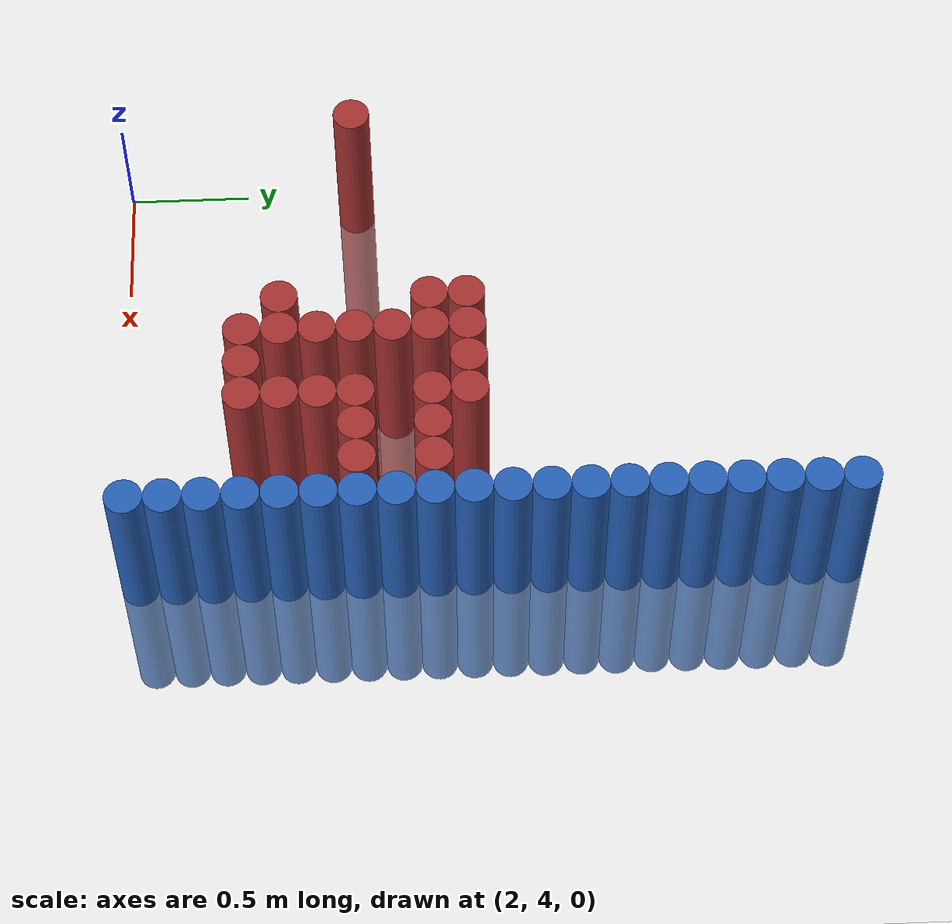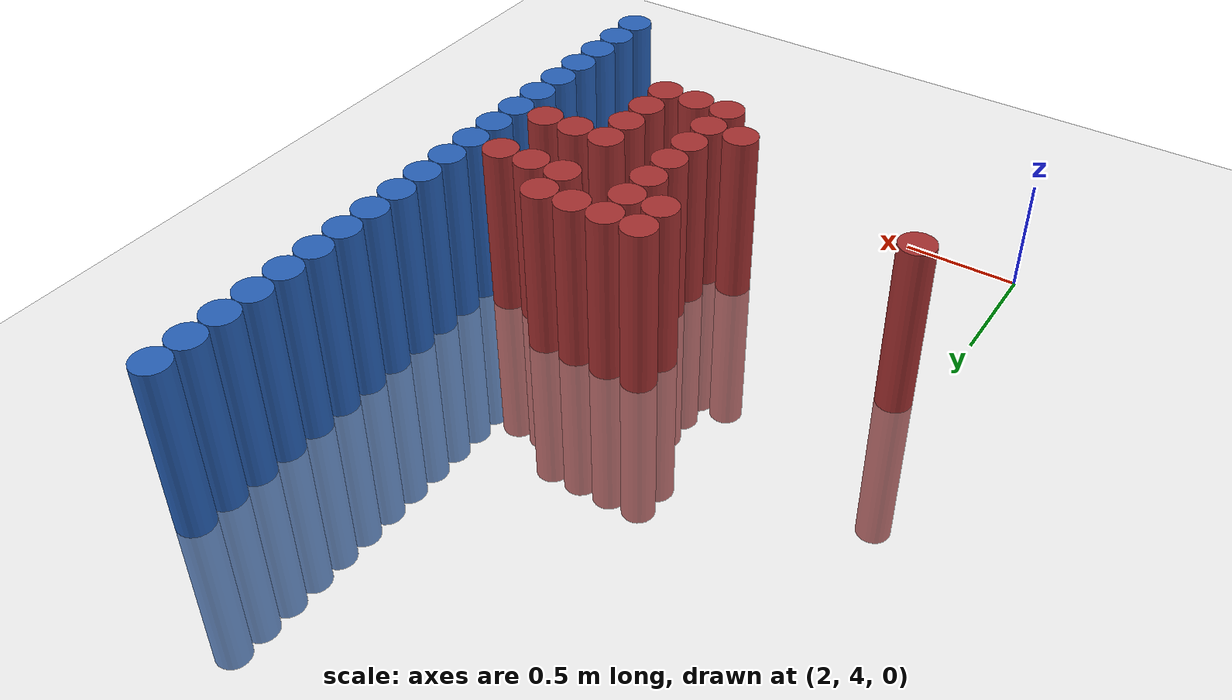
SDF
<sdf version="1.6">
 <world name="default">
  <model name="ground_plane">
   <static>1</static>
   <link name="link">
    <collision name="collision">
     <geometry><plane><normal>0 0 1</normal><size>100 100</size></plane></geometry>
     <surface><friction><ode><mu>100</mu><mu2>50</mu2></ode></friction></surface>
    </collision>
    <visual name="visual">
     <cast_shadows>0</cast_shadows>
     <geometry><plane><normal>0 0 1</normal><size>100 100</size></plane></geometry>
     <material>
      <script><uri>file://media/materials/scripts/gazebo.material</uri><name>Gazebo/Grey</name></script>
     </material>
    </visual>
   </link>
  </model>
  <model name="unit_cylinder_170">
   <static>1</static>
   <pose>3.925000 4.225000 0.000000 0.000000 0.000000 0.000000</pose>
   <link name="link">
    <inertial>
     <mass>1</mass>
     <inertia><ixx>0.145833</ixx><ixy>0</ixy><ixz>0</ixz><iyy>0.145833</iyy><iyz>0</iyz><izz>0.125</izz></inertia>
    </inertial>
    <collision name="collision">
     <geometry><cylinder><radius>0.075000</radius><length>1.5</length></cylinder></geometry>
    </collision>
    <visual name="visual">
     <geometry><cylinder><radius>0.075000</radius><length>1.5</length></cylinder></geometry>
     <material>
      <ambient>0.152000 0.379000 0.720000 1</ambient>
      <diffuse>0.152000 0.379000 0.720000 1</diffuse>
     </material>
     <material>
      <script><name>Gazebo/Grey</name><uri>file://media/materials/scripts/gazebo.material</uri></script>
     </material>
    </visual>
   </link>
  </model>
  <model name="unit_cylinder_172">
   <static>1</static>
   <pose>3.925000 4.375000 0.000000 0.000000 0.000000 0.000000</pose>
   <link name="link">
    <inertial>
     <mass>1</mass>
     <inertia><ixx>0.145833</ixx><ixy>0</ixy><ixz>0</ixz><iyy>0.145833</iyy><iyz>0</iyz><izz>0.125</izz></inertia>
    </inertial>
    <collision name="collision">
     <geometry><cylinder><radius>0.075000</radius><length>1.5</length></cylinder></geometry>
    </collision>
    <visual name="visual">
     <geometry><cylinder><radius>0.075000</radius><length>1.5</length></cylinder></geometry>
     <material>
      <ambient>0.152000 0.379000 0.720000 1</ambient>
      <diffuse>0.152000 0.379000 0.720000 1</diffuse>
     </material>
     <material>
      <script><name>Gazebo/Grey</name><uri>file://media/materials/scripts/gazebo.material</uri></script>
     </material>
    </visual>
   </link>
  </model>
  <model name="unit_cylinder_174">
   <static>1</static>
   <pose>3.925000 4.525000 0.000000 0.000000 0.000000 0.000000</pose>
   <link name="link">
    <inertial>
     <mass>1</mass>
     <inertia><ixx>0.145833</ixx><ixy>0</ixy><ixz>0</ixz><iyy>0.145833</iyy><iyz>0</iyz><izz>0.125</izz></inertia>
    </inertial>
    <collision name="collision">
     <geometry><cylinder><radius>0.075000</radius><length>1.5</length></cylinder></geometry>
    </collision>
    <visual name="visual">
     <geometry><cylinder><radius>0.075000</radius><length>1.5</length></cylinder></geometry>
     <material>
      <ambient>0.152000 0.379000 0.720000 1</ambient>
      <diffuse>0.152000 0.379000 0.720000 1</diffuse>
     </material>
     <material>
      <script><name>Gazebo/Grey</name><uri>file://media/materials/scripts/gazebo.material</uri></script>
     </material>
    </visual>
   </link>
  </model>
  <model name="unit_cylinder_176">
   <static>1</static>
   <pose>3.925000 4.675000 0.000000 0.000000 0.000000 0.000000</pose>
   <link name="link">
    <inertial>
     <mass>1</mass>
     <inertia><ixx>0.145833</ixx><ixy>0</ixy><ixz>0</ixz><iyy>0.145833</iyy><iyz>0</iyz><izz>0.125</izz></inertia>
    </inertial>
    <collision name="collision">
     <geometry><cylinder><radius>0.075000</radius><length>1.5</length></cylinder></geometry>
    </collision>
    <visual name="visual">
     <geometry><cylinder><radius>0.075000</radius><length>1.5</length></cylinder></geometry>
     <material>
      <ambient>0.152000 0.379000 0.720000 1</ambient>
      <diffuse>0.152000 0.379000 0.720000 1</diffuse>
     </material>
     <material>
      <script><name>Gazebo/Grey</name><uri>file://media/materials/scripts/gazebo.material</uri></script>
     </material>
    </visual>
   </link>
  </model>
  <model name="unit_cylinder_178">
   <static>1</static>
   <pose>3.925000 4.825000 0.000000 0.000000 0.000000 0.000000</pose>
   <link name="link">
    <inertial>
     <mass>1</mass>
     <inertia><ixx>0.145833</ixx><ixy>0</ixy><ixz>0</ixz><iyy>0.145833</iyy><iyz>0</iyz><izz>0.125</izz></inertia>
    </inertial>
    <collision name="collision">
     <geometry><cylinder><radius>0.075000</radius><length>1.5</length></cylinder></geometry>
    </collision>
    <visual name="visual">
     <geometry><cylinder><radius>0.075000</radius><length>1.5</length></cylinder></geometry>
     <material>
      <ambient>0.152000 0.379000 0.720000 1</ambient>
      <diffuse>0.152000 0.379000 0.720000 1</diffuse>
     </material>
     <material>
      <script><name>Gazebo/Grey</name><uri>file://media/materials/scripts/gazebo.material</uri></script>
     </material>
    </visual>
   </link>
  </model>
  <model name="unit_cylinder_180">
   <static>1</static>
   <pose>3.925000 4.975000 0.000000 0.000000 0.000000 0.000000</pose>
   <link name="link">
    <inertial>
     <mass>1</mass>
     <inertia><ixx>0.145833</ixx><ixy>0</ixy><ixz>0</ixz><iyy>0.145833</iyy><iyz>0</iyz><izz>0.125</izz></inertia>
    </inertial>
    <collision name="collision">
     <geometry><cylinder><radius>0.075000</radius><length>1.5</length></cylinder></geometry>
    </collision>
    <visual name="visual">
     <geometry><cylinder><radius>0.075000</radius><length>1.5</length></cylinder></geometry>
     <material>
      <ambient>0.152000 0.379000 0.720000 1</ambient>
      <diffuse>0.152000 0.379000 0.720000 1</diffuse>
     </material>
     <material>
      <script><name>Gazebo/Grey</name><uri>file://media/materials/scripts/gazebo.material</uri></script>
     </material>
    </visual>
   </link>
  </model>
  <model name="unit_cylinder_182">
   <static>1</static>
   <pose>3.925000 5.125000 0.000000 0.000000 0.000000 0.000000</pose>
   <link name="link">
    <inertial>
     <mass>1</mass>
     <inertia><ixx>0.145833</ixx><ixy>0</ixy><ixz>0</ixz><iyy>0.145833</iyy><iyz>0</iyz><izz>0.125</izz></inertia>
    </inertial>
    <collision name="collision">
     <geometry><cylinder><radius>0.075000</radius><length>1.5</length></cylinder></geometry>
    </collision>
    <visual name="visual">
     <geometry><cylinder><radius>0.075000</radius><length>1.5</length></cylinder></geometry>
     <material>
      <ambient>0.152000 0.379000 0.720000 1</ambient>
      <diffuse>0.152000 0.379000 0.720000 1</diffuse>
     </material>
     <material>
      <script><name>Gazebo/Grey</name><uri>file://media/materials/scripts/gazebo.material</uri></script>
     </material>
    </visual>
   </link>
  </model>
  <model name="unit_cylinder_184">
   <static>1</static>
   <pose>3.925000 5.275000 0.000000 0.000000 0.000000 0.000000</pose>
   <link name="link">
    <inertial>
     <mass>1</mass>
     <inertia><ixx>0.145833</ixx><ixy>0</ixy><ixz>0</ixz><iyy>0.145833</iyy><iyz>0</iyz><izz>0.125</izz></inertia>
    </inertial>
    <collision name="collision">
     <geometry><cylinder><radius>0.075000</radius><length>1.5</length></cylinder></geometry>
    </collision>
    <visual name="visual">
     <geometry><cylinder><radius>0.075000</radius><length>1.5</length></cylinder></geometry>
     <material>
      <ambient>0.152000 0.379000 0.720000 1</ambient>
      <diffuse>0.152000 0.379000 0.720000 1</diffuse>
     </material>
     <material>
      <script><name>Gazebo/Grey</name><uri>file://media/materials/scripts/gazebo.material</uri></script>
     </material>
    </visual>
   </link>
  </model>
  <model name="unit_cylinder_186">
   <static>1</static>
   <pose>3.925000 5.425000 0.000000 0.000000 0.000000 0.000000</pose>
   <link name="link">
    <inertial>
     <mass>1</mass>
     <inertia><ixx>0.145833</ixx><ixy>0</ixy><ixz>0</ixz><iyy>0.145833</iyy><iyz>0</iyz><izz>0.125</izz></inertia>
    </inertial>
    <collision name="collision">
     <geometry><cylinder><radius>0.075000</radius><length>1.5</length></cylinder></geometry>
    </collision>
    <visual name="visual">
     <geometry><cylinder><radius>0.075000</radius><length>1.5</length></cylinder></geometry>
     <material>
      <ambient>0.152000 0.379000 0.720000 1</ambient>
      <diffuse>0.152000 0.379000 0.720000 1</diffuse>
     </material>
     <material>
      <script><name>Gazebo/Grey</name><uri>file://media/materials/scripts/gazebo.material</uri></script>
     </material>
    </visual>
   </link>
  </model>
  <model name="unit_cylinder_188">
   <static>1</static>
   <pose>3.925000 5.575000 0.000000 0.000000 0.000000 0.000000</pose>
   <link name="link">
    <inertial>
     <mass>1</mass>
     <inertia><ixx>0.145833</ixx><ixy>0</ixy><ixz>0</ixz><iyy>0.145833</iyy><iyz>0</iyz><izz>0.125</izz></inertia>
    </inertial>
    <collision name="collision">
     <geometry><cylinder><radius>0.075000</radius><length>1.5</length></cylinder></geometry>
    </collision>
    <visual name="visual">
     <geometry><cylinder><radius>0.075000</radius><length>1.5</length></cylinder></geometry>
     <material>
      <ambient>0.152000 0.379000 0.720000 1</ambient>
      <diffuse>0.152000 0.379000 0.720000 1</diffuse>
     </material>
     <material>
      <script><name>Gazebo/Grey</name><uri>file://media/materials/scripts/gazebo.material</uri></script>
     </material>
    </visual>
   </link>
  </model>
  <model name="unit_cylinder_190">
   <static>1</static>
   <pose>3.925000 5.725000 0.000000 0.000000 0.000000 0.000000</pose>
   <link name="link">
    <inertial>
     <mass>1</mass>
     <inertia><ixx>0.145833</ixx><ixy>0</ixy><ixz>0</ixz><iyy>0.145833</iyy><iyz>0</iyz><izz>0.125</izz></inertia>
    </inertial>
    <collision name="collision">
     <geometry><cylinder><radius>0.075000</radius><length>1.5</length></cylinder></geometry>
    </collision>
    <visual name="visual">
     <geometry><cylinder><radius>0.075000</radius><length>1.5</length></cylinder></geometry>
     <material>
      <ambient>0.152000 0.379000 0.720000 1</ambient>
      <diffuse>0.152000 0.379000 0.720000 1</diffuse>
     </material>
     <material>
      <script><name>Gazebo/Grey</name><uri>file://media/materials/scripts/gazebo.material</uri></script>
     </material>
    </visual>
   </link>
  </model>
  <model name="unit_cylinder_192">
   <static>1</static>
   <pose>3.925000 5.875000 0.000000 0.000000 0.000000 0.000000</pose>
   <link name="link">
    <inertial>
     <mass>1</mass>
     <inertia><ixx>0.145833</ixx><ixy>0</ixy><ixz>0</ixz><iyy>0.145833</iyy><iyz>0</iyz><izz>0.125</izz></inertia>
    </inertial>
    <collision name="collision">
     <geometry><cylinder><radius>0.075000</radius><length>1.5</length></cylinder></geometry>
    </collision>
    <visual name="visual">
     <geometry><cylinder><radius>0.075000</radius><length>1.5</length></cylinder></geometry>
     <material>
      <ambient>0.152000 0.379000 0.720000 1</ambient>
      <diffuse>0.152000 0.379000 0.720000 1</diffuse>
     </material>
     <material>
      <script><name>Gazebo/Grey</name><uri>file://media/materials/scripts/gazebo.material</uri></script>
     </material>
    </visual>
   </link>
  </model>
  <model name="unit_cylinder_194">
   <static>1</static>
   <pose>3.925000 6.025000 0.000000 0.000000 0.000000 0.000000</pose>
   <link name="link">
    <inertial>
     <mass>1</mass>
     <inertia><ixx>0.145833</ixx><ixy>0</ixy><ixz>0</ixz><iyy>0.145833</iyy><iyz>0</iyz><izz>0.125</izz></inertia>
    </inertial>
    <collision name="collision">
     <geometry><cylinder><radius>0.075000</radius><length>1.5</length></cylinder></geometry>
    </collision>
    <visual name="visual">
     <geometry><cylinder><radius>0.075000</radius><length>1.5</length></cylinder></geometry>
     <material>
      <ambient>0.152000 0.379000 0.720000 1</ambient>
      <diffuse>0.152000 0.379000 0.720000 1</diffuse>
     </material>
     <material>
      <script><name>Gazebo/Grey</name><uri>file://media/materials/scripts/gazebo.material</uri></script>
     </material>
    </visual>
   </link>
  </model>
  <model name="unit_cylinder_196">
   <static>1</static>
   <pose>3.925000 6.175000 0.000000 0.000000 0.000000 0.000000</pose>
   <link name="link">
    <inertial>
     <mass>1</mass>
     <inertia><ixx>0.145833</ixx><ixy>0</ixy><ixz>0</ixz><iyy>0.145833</iyy><iyz>0</iyz><izz>0.125</izz></inertia>
    </inertial>
    <collision name="collision">
     <geometry><cylinder><radius>0.075000</radius><length>1.5</length></cylinder></geometry>
    </collision>
    <visual name="visual">
     <geometry><cylinder><radius>0.075000</radius><length>1.5</length></cylinder></geometry>
     <material>
      <ambient>0.152000 0.379000 0.720000 1</ambient>
      <diffuse>0.152000 0.379000 0.720000 1</diffuse>
     </material>
     <material>
      <script><name>Gazebo/Grey</name><uri>file://media/materials/scripts/gazebo.material</uri></script>
     </material>
    </visual>
   </link>
  </model>
  <model name="unit_cylinder_198">
   <static>1</static>
   <pose>3.925000 6.325000 0.000000 0.000000 0.000000 0.000000</pose>
   <link name="link">
    <inertial>
     <mass>1</mass>
     <inertia><ixx>0.145833</ixx><ixy>0</ixy><ixz>0</ixz><iyy>0.145833</iyy><iyz>0</iyz><izz>0.125</izz></inertia>
    </inertial>
    <collision name="collision">
     <geometry><cylinder><radius>0.075000</radius><length>1.5</length></cylinder></geometry>
    </collision>
    <visual name="visual">
     <geometry><cylinder><radius>0.075000</radius><length>1.5</length></cylinder></geometry>
     <material>
      <ambient>0.152000 0.379000 0.720000 1</ambient>
      <diffuse>0.152000 0.379000 0.720000 1</diffuse>
     </material>
     <material>
      <script><name>Gazebo/Grey</name><uri>file://media/materials/scripts/gazebo.material</uri></script>
     </material>
    </visual>
   </link>
  </model>
  <model name="unit_cylinder_200">
   <static>1</static>
   <pose>3.925000 6.475000 0.000000 0.000000 0.000000 0.000000</pose>
   <link name="link">
    <inertial>
     <mass>1</mass>
     <inertia><ixx>0.145833</ixx><ixy>0</ixy><ixz>0</ixz><iyy>0.145833</iyy><iyz>0</iyz><izz>0.125</izz></inertia>
    </inertial>
    <collision name="collision">
     <geometry><cylinder><radius>0.075000</radius><length>1.5</length></cylinder></geometry>
    </collision>
    <visual name="visual">
     <geometry><cylinder><radius>0.075000</radius><length>1.5</length></cylinder></geometry>
     <material>
      <ambient>0.152000 0.379000 0.720000 1</ambient>
      <diffuse>0.152000 0.379000 0.720000 1</diffuse>
     </material>
     <material>
      <script><name>Gazebo/Grey</name><uri>file://media/materials/scripts/gazebo.material</uri></script>
     </material>
    </visual>
   </link>
  </model>
  <model name="unit_cylinder_202">
   <static>1</static>
   <pose>3.925000 6.625000 0.000000 0.000000 0.000000 0.000000</pose>
   <link name="link">
    <inertial>
     <mass>1</mass>
     <inertia><ixx>0.145833</ixx><ixy>0</ixy><ixz>0</ixz><iyy>0.145833</iyy><iyz>0</iyz><izz>0.125</izz></inertia>
    </inertial>
    <collision name="collision">
     <geometry><cylinder><radius>0.075000</radius><length>1.5</length></cylinder></geometry>
    </collision>
    <visual name="visual">
     <geometry><cylinder><radius>0.075000</radius><length>1.5</length></cylinder></geometry>
     <material>
      <ambient>0.152000 0.379000 0.720000 1</ambient>
      <diffuse>0.152000 0.379000 0.720000 1</diffuse>
     </material>
     <material>
      <script><name>Gazebo/Grey</name><uri>file://media/materials/scripts/gazebo.material</uri></script>
     </material>
    </visual>
   </link>
  </model>
  <model name="unit_cylinder_204">
   <static>1</static>
   <pose>3.925000 6.775000 0.000000 0.000000 0.000000 0.000000</pose>
   <link name="link">
    <inertial>
     <mass>1</mass>
     <inertia><ixx>0.145833</ixx><ixy>0</ixy><ixz>0</ixz><iyy>0.145833</iyy><iyz>0</iyz><izz>0.125</izz></inertia>
    </inertial>
    <collision name="collision">
     <geometry><cylinder><radius>0.075000</radius><length>1.5</length></cylinder></geometry>
    </collision>
    <visual name="visual">
     <geometry><cylinder><radius>0.075000</radius><length>1.5</length></cylinder></geometry>
     <material>
      <ambient>0.152000 0.379000 0.720000 1</ambient>
      <diffuse>0.152000 0.379000 0.720000 1</diffuse>
     </material>
     <material>
      <script><name>Gazebo/Grey</name><uri>file://media/materials/scripts/gazebo.material</uri></script>
     </material>
    </visual>
   </link>
  </model>
  <model name="unit_cylinder_206">
   <static>1</static>
   <pose>3.925000 6.925000 0.000000 0.000000 0.000000 0.000000</pose>
   <link name="link">
    <inertial>
     <mass>1</mass>
     <inertia><ixx>0.145833</ixx><ixy>0</ixy><ixz>0</ixz><iyy>0.145833</iyy><iyz>0</iyz><izz>0.125</izz></inertia>
    </inertial>
    <collision name="collision">
     <geometry><cylinder><radius>0.075000</radius><length>1.5</length></cylinder></geometry>
    </collision>
    <visual name="visual">
     <geometry><cylinder><radius>0.075000</radius><length>1.5</length></cylinder></geometry>
     <material>
      <ambient>0.152000 0.379000 0.720000 1</ambient>
      <diffuse>0.152000 0.379000 0.720000 1</diffuse>
     </material>
     <material>
      <script><name>Gazebo/Grey</name><uri>file://media/materials/scripts/gazebo.material</uri></script>
     </material>
    </visual>
   </link>
  </model>
  <model name="unit_cylinder_417">
   <static>1</static>
   <pose>2.125000 4.975000 0.000000 0.000000 0.000000 0.000000</pose>
   <link name="link">
    <inertial>
     <mass>1</mass>
     <inertia><ixx>0.145833</ixx><ixy>0</ixy><ixz>0</ixz><iyy>0.145833</iyy><iyz>0</iyz><izz>0.125</izz></inertia>
    </inertial>
    <collision name="collision">
     <geometry><cylinder><radius>0.075000</radius><length>1.5</length></cylinder></geometry>
    </collision>
    <visual name="visual">
     <geometry><cylinder><radius>0.075000</radius><length>1.5</length></cylinder></geometry>
     <material>
      <ambient>0.648000 0.192000 0.192000 1</ambient>
      <diffuse>0.648000 0.192000 0.192000 1</diffuse>
     </material>
     <material>
      <script><name>Gazebo/Grey</name><uri>file://media/materials/scripts/gazebo.material</uri></script>
     </material>
    </visual>
   </link>
  </model>
  <model name="unit_cylinder_459">
   <static>1</static>
   <pose>3.025000 4.675000 0.000000 0.000000 0.000000 0.000000</pose>
   <link name="link">
    <inertial>
     <mass>1</mass>
     <inertia><ixx>0.145833</ixx><ixy>0</ixy><ixz>0</ixz><iyy>0.145833</iyy><iyz>0</iyz><izz>0.125</izz></inertia>
    </inertial>
    <collision name="collision">
     <geometry><cylinder><radius>0.075000</radius><length>1.5</length></cylinder></geometry>
    </collision>
    <visual name="visual">
     <geometry><cylinder><radius>0.075000</radius><length>1.5</length></cylinder></geometry>
     <material>
      <ambient>0.648000 0.192000 0.192000 1</ambient>
      <diffuse>0.648000 0.192000 0.192000 1</diffuse>
     </material>
     <material>
      <script><name>Gazebo/Grey</name><uri>file://media/materials/scripts/gazebo.material</uri></script>
     </material>
    </visual>
   </link>
  </model>
  <model name="unit_cylinder_460">
   <static>1</static>
   <pose>3.025000 5.275000 0.000000 0.000000 0.000000 0.000000</pose>
   <link name="link">
    <inertial>
     <mass>1</mass>
     <inertia><ixx>0.145833</ixx><ixy>0</ixy><ixz>0</ixz><iyy>0.145833</iyy><iyz>0</iyz><izz>0.125</izz></inertia>
    </inertial>
    <collision name="collision">
     <geometry><cylinder><radius>0.075000</radius><length>1.5</length></cylinder></geometry>
    </collision>
    <visual name="visual">
     <geometry><cylinder><radius>0.075000</radius><length>1.5</length></cylinder></geometry>
     <material>
      <ambient>0.648000 0.192000 0.192000 1</ambient>
      <diffuse>0.648000 0.192000 0.192000 1</diffuse>
     </material>
     <material>
      <script><name>Gazebo/Grey</name><uri>file://media/materials/scripts/gazebo.material</uri></script>
     </material>
    </visual>
   </link>
  </model>
  <model name="unit_cylinder_461">
   <static>1</static>
   <pose>3.025000 5.425000 0.000000 0.000000 0.000000 0.000000</pose>
   <link name="link">
    <inertial>
     <mass>1</mass>
     <inertia><ixx>0.145833</ixx><ixy>0</ixy><ixz>0</ixz><iyy>0.145833</iyy><iyz>0</iyz><izz>0.125</izz></inertia>
    </inertial>
    <collision name="collision">
     <geometry><cylinder><radius>0.075000</radius><length>1.5</length></cylinder></geometry>
    </collision>
    <visual name="visual">
     <geometry><cylinder><radius>0.075000</radius><length>1.5</length></cylinder></geometry>
     <material>
      <ambient>0.648000 0.192000 0.192000 1</ambient>
      <diffuse>0.648000 0.192000 0.192000 1</diffuse>
     </material>
     <material>
      <script><name>Gazebo/Grey</name><uri>file://media/materials/scripts/gazebo.material</uri></script>
     </material>
    </visual>
   </link>
  </model>
  <model name="unit_cylinder_465">
   <static>1</static>
   <pose>3.175000 4.525000 0.000000 0.000000 0.000000 0.000000</pose>
   <link name="link">
    <inertial>
     <mass>1</mass>
     <inertia><ixx>0.145833</ixx><ixy>0</ixy><ixz>0</ixz><iyy>0.145833</iyy><iyz>0</iyz><izz>0.125</izz></inertia>
    </inertial>
    <collision name="collision">
     <geometry><cylinder><radius>0.075000</radius><length>1.5</length></cylinder></geometry>
    </collision>
    <visual name="visual">
     <geometry><cylinder><radius>0.075000</radius><length>1.5</length></cylinder></geometry>
     <material>
      <ambient>0.648000 0.192000 0.192000 1</ambient>
      <diffuse>0.648000 0.192000 0.192000 1</diffuse>
     </material>
     <material>
      <script><name>Gazebo/Grey</name><uri>file://media/materials/scripts/gazebo.material</uri></script>
     </material>
    </visual>
   </link>
  </model>
  <model name="unit_cylinder_466">
   <static>1</static>
   <pose>3.175000 4.675000 0.000000 0.000000 0.000000 0.000000</pose>
   <link name="link">
    <inertial>
     <mass>1</mass>
     <inertia><ixx>0.145833</ixx><ixy>0</ixy><ixz>0</ixz><iyy>0.145833</iyy><iyz>0</iyz><izz>0.125</izz></inertia>
    </inertial>
    <collision name="collision">
     <geometry><cylinder><radius>0.075000</radius><length>1.5</length></cylinder></geometry>
    </collision>
    <visual name="visual">
     <geometry><cylinder><radius>0.075000</radius><length>1.5</length></cylinder></geometry>
     <material>
      <ambient>0.648000 0.192000 0.192000 1</ambient>
      <diffuse>0.648000 0.192000 0.192000 1</diffuse>
     </material>
     <material>
      <script><name>Gazebo/Grey</name><uri>file://media/materials/scripts/gazebo.material</uri></script>
     </material>
    </visual>
   </link>
  </model>
  <model name="unit_cylinder_467">
   <static>1</static>
   <pose>3.175000 4.825000 0.000000 0.000000 0.000000 0.000000</pose>
   <link name="link">
    <inertial>
     <mass>1</mass>
     <inertia><ixx>0.145833</ixx><ixy>0</ixy><ixz>0</ixz><iyy>0.145833</iyy><iyz>0</iyz><izz>0.125</izz></inertia>
    </inertial>
    <collision name="collision">
     <geometry><cylinder><radius>0.075000</radius><length>1.5</length></cylinder></geometry>
    </collision>
    <visual name="visual">
     <geometry><cylinder><radius>0.075000</radius><length>1.5</length></cylinder></geometry>
     <material>
      <ambient>0.648000 0.192000 0.192000 1</ambient>
      <diffuse>0.648000 0.192000 0.192000 1</diffuse>
     </material>
     <material>
      <script><name>Gazebo/Grey</name><uri>file://media/materials/scripts/gazebo.material</uri></script>
     </material>
    </visual>
   </link>
  </model>
  <model name="unit_cylinder_468">
   <static>1</static>
   <pose>3.175000 4.975000 0.000000 0.000000 0.000000 0.000000</pose>
   <link name="link">
    <inertial>
     <mass>1</mass>
     <inertia><ixx>0.145833</ixx><ixy>0</ixy><ixz>0</ixz><iyy>0.145833</iyy><iyz>0</iyz><izz>0.125</izz></inertia>
    </inertial>
    <collision name="collision">
     <geometry><cylinder><radius>0.075000</radius><length>1.5</length></cylinder></geometry>
    </collision>
    <visual name="visual">
     <geometry><cylinder><radius>0.075000</radius><length>1.5</length></cylinder></geometry>
     <material>
      <ambient>0.648000 0.192000 0.192000 1</ambient>
      <diffuse>0.648000 0.192000 0.192000 1</diffuse>
     </material>
     <material>
      <script><name>Gazebo/Grey</name><uri>file://media/materials/scripts/gazebo.material</uri></script>
     </material>
    </visual>
   </link>
  </model>
  <model name="unit_cylinder_469">
   <static>1</static>
   <pose>3.175000 5.125000 0.000000 0.000000 0.000000 0.000000</pose>
   <link name="link">
    <inertial>
     <mass>1</mass>
     <inertia><ixx>0.145833</ixx><ixy>0</ixy><ixz>0</ixz><iyy>0.145833</iyy><iyz>0</iyz><izz>0.125</izz></inertia>
    </inertial>
    <collision name="collision">
     <geometry><cylinder><radius>0.075000</radius><length>1.5</length></cylinder></geometry>
    </collision>
    <visual name="visual">
     <geometry><cylinder><radius>0.075000</radius><length>1.5</length></cylinder></geometry>
     <material>
      <ambient>0.648000 0.192000 0.192000 1</ambient>
      <diffuse>0.648000 0.192000 0.192000 1</diffuse>
     </material>
     <material>
      <script><name>Gazebo/Grey</name><uri>file://media/materials/scripts/gazebo.material</uri></script>
     </material>
    </visual>
   </link>
  </model>
  <model name="unit_cylinder_470">
   <static>1</static>
   <pose>3.175000 5.275000 0.000000 0.000000 0.000000 0.000000</pose>
   <link name="link">
    <inertial>
     <mass>1</mass>
     <inertia><ixx>0.145833</ixx><ixy>0</ixy><ixz>0</ixz><iyy>0.145833</iyy><iyz>0</iyz><izz>0.125</izz></inertia>
    </inertial>
    <collision name="collision">
     <geometry><cylinder><radius>0.075000</radius><length>1.5</length></cylinder></geometry>
    </collision>
    <visual name="visual">
     <geometry><cylinder><radius>0.075000</radius><length>1.5</length></cylinder></geometry>
     <material>
      <ambient>0.648000 0.192000 0.192000 1</ambient>
      <diffuse>0.648000 0.192000 0.192000 1</diffuse>
     </material>
     <material>
      <script><name>Gazebo/Grey</name><uri>file://media/materials/scripts/gazebo.material</uri></script>
     </material>
    </visual>
   </link>
  </model>
  <model name="unit_cylinder_471">
   <static>1</static>
   <pose>3.175000 5.425000 0.000000 0.000000 0.000000 0.000000</pose>
   <link name="link">
    <inertial>
     <mass>1</mass>
     <inertia><ixx>0.145833</ixx><ixy>0</ixy><ixz>0</ixz><iyy>0.145833</iyy><iyz>0</iyz><izz>0.125</izz></inertia>
    </inertial>
    <collision name="collision">
     <geometry><cylinder><radius>0.075000</radius><length>1.5</length></cylinder></geometry>
    </collision>
    <visual name="visual">
     <geometry><cylinder><radius>0.075000</radius><length>1.5</length></cylinder></geometry>
     <material>
      <ambient>0.648000 0.192000 0.192000 1</ambient>
      <diffuse>0.648000 0.192000 0.192000 1</diffuse>
     </material>
     <material>
      <script><name>Gazebo/Grey</name><uri>file://media/materials/scripts/gazebo.material</uri></script>
     </material>
    </visual>
   </link>
  </model>
  <model name="unit_cylinder_475">
   <static>1</static>
   <pose>3.325000 4.525000 0.000000 0.000000 0.000000 0.000000</pose>
   <link name="link">
    <inertial>
     <mass>1</mass>
     <inertia><ixx>0.145833</ixx><ixy>0</ixy><ixz>0</ixz><iyy>0.145833</iyy><iyz>0</iyz><izz>0.125</izz></inertia>
    </inertial>
    <collision name="collision">
     <geometry><cylinder><radius>0.075000</radius><length>1.5</length></cylinder></geometry>
    </collision>
    <visual name="visual">
     <geometry><cylinder><radius>0.075000</radius><length>1.5</length></cylinder></geometry>
     <material>
      <ambient>0.648000 0.192000 0.192000 1</ambient>
      <diffuse>0.648000 0.192000 0.192000 1</diffuse>
     </material>
     <material>
      <script><name>Gazebo/Grey</name><uri>file://media/materials/scripts/gazebo.material</uri></script>
     </material>
    </visual>
   </link>
  </model>
  <model name="unit_cylinder_476">
   <static>1</static>
   <pose>3.325000 5.425000 0.000000 0.000000 0.000000 0.000000</pose>
   <link name="link">
    <inertial>
     <mass>1</mass>
     <inertia><ixx>0.145833</ixx><ixy>0</ixy><ixz>0</ixz><iyy>0.145833</iyy><iyz>0</iyz><izz>0.125</izz></inertia>
    </inertial>
    <collision name="collision">
     <geometry><cylinder><radius>0.075000</radius><length>1.5</length></cylinder></geometry>
    </collision>
    <visual name="visual">
     <geometry><cylinder><radius>0.075000</radius><length>1.5</length></cylinder></geometry>
     <material>
      <ambient>0.648000 0.192000 0.192000 1</ambient>
      <diffuse>0.648000 0.192000 0.192000 1</diffuse>
     </material>
     <material>
      <script><name>Gazebo/Grey</name><uri>file://media/materials/scripts/gazebo.material</uri></script>
     </material>
    </visual>
   </link>
  </model>
  <model name="unit_cylinder_482">
   <static>1</static>
   <pose>3.475000 4.525000 0.000000 0.000000 0.000000 0.000000</pose>
   <link name="link">
    <inertial>
     <mass>1</mass>
     <inertia><ixx>0.145833</ixx><ixy>0</ixy><ixz>0</ixz><iyy>0.145833</iyy><iyz>0</iyz><izz>0.125</izz></inertia>
    </inertial>
    <collision name="collision">
     <geometry><cylinder><radius>0.075000</radius><length>1.5</length></cylinder></geometry>
    </collision>
    <visual name="visual">
     <geometry><cylinder><radius>0.075000</radius><length>1.5</length></cylinder></geometry>
     <material>
      <ambient>0.648000 0.192000 0.192000 1</ambient>
      <diffuse>0.648000 0.192000 0.192000 1</diffuse>
     </material>
     <material>
      <script><name>Gazebo/Grey</name><uri>file://media/materials/scripts/gazebo.material</uri></script>
     </material>
    </visual>
   </link>
  </model>
  <model name="unit_cylinder_483">
   <static>1</static>
   <pose>3.475000 4.675000 0.000000 0.000000 0.000000 0.000000</pose>
   <link name="link">
    <inertial>
     <mass>1</mass>
     <inertia><ixx>0.145833</ixx><ixy>0</ixy><ixz>0</ixz><iyy>0.145833</iyy><iyz>0</iyz><izz>0.125</izz></inertia>
    </inertial>
    <collision name="collision">
     <geometry><cylinder><radius>0.075000</radius><length>1.5</length></cylinder></geometry>
    </collision>
    <visual name="visual">
     <geometry><cylinder><radius>0.075000</radius><length>1.5</length></cylinder></geometry>
     <material>
      <ambient>0.648000 0.192000 0.192000 1</ambient>
      <diffuse>0.648000 0.192000 0.192000 1</diffuse>
     </material>
     <material>
      <script><name>Gazebo/Grey</name><uri>file://media/materials/scripts/gazebo.material</uri></script>
     </material>
    </visual>
   </link>
  </model>
  <model name="unit_cylinder_484">
   <static>1</static>
   <pose>3.475000 4.825000 0.000000 0.000000 0.000000 0.000000</pose>
   <link name="link">
    <inertial>
     <mass>1</mass>
     <inertia><ixx>0.145833</ixx><ixy>0</ixy><ixz>0</ixz><iyy>0.145833</iyy><iyz>0</iyz><izz>0.125</izz></inertia>
    </inertial>
    <collision name="collision">
     <geometry><cylinder><radius>0.075000</radius><length>1.5</length></cylinder></geometry>
    </collision>
    <visual name="visual">
     <geometry><cylinder><radius>0.075000</radius><length>1.5</length></cylinder></geometry>
     <material>
      <ambient>0.648000 0.192000 0.192000 1</ambient>
      <diffuse>0.648000 0.192000 0.192000 1</diffuse>
     </material>
     <material>
      <script><name>Gazebo/Grey</name><uri>file://media/materials/scripts/gazebo.material</uri></script>
     </material>
    </visual>
   </link>
  </model>
  <model name="unit_cylinder_485">
   <static>1</static>
   <pose>3.475000 4.975000 0.000000 0.000000 0.000000 0.000000</pose>
   <link name="link">
    <inertial>
     <mass>1</mass>
     <inertia><ixx>0.145833</ixx><ixy>0</ixy><ixz>0</ixz><iyy>0.145833</iyy><iyz>0</iyz><izz>0.125</izz></inertia>
    </inertial>
    <collision name="collision">
     <geometry><cylinder><radius>0.075000</radius><length>1.5</length></cylinder></geometry>
    </collision>
    <visual name="visual">
     <geometry><cylinder><radius>0.075000</radius><length>1.5</length></cylinder></geometry>
     <material>
      <ambient>0.648000 0.192000 0.192000 1</ambient>
      <diffuse>0.648000 0.192000 0.192000 1</diffuse>
     </material>
     <material>
      <script><name>Gazebo/Grey</name><uri>file://media/materials/scripts/gazebo.material</uri></script>
     </material>
    </visual>
   </link>
  </model>
  <model name="unit_cylinder_486">
   <static>1</static>
   <pose>3.475000 5.275000 0.000000 0.000000 0.000000 0.000000</pose>
   <link name="link">
    <inertial>
     <mass>1</mass>
     <inertia><ixx>0.145833</ixx><ixy>0</ixy><ixz>0</ixz><iyy>0.145833</iyy><iyz>0</iyz><izz>0.125</izz></inertia>
    </inertial>
    <collision name="collision">
     <geometry><cylinder><radius>0.075000</radius><length>1.5</length></cylinder></geometry>
    </collision>
    <visual name="visual">
     <geometry><cylinder><radius>0.075000</radius><length>1.5</length></cylinder></geometry>
     <material>
      <ambient>0.648000 0.192000 0.192000 1</ambient>
      <diffuse>0.648000 0.192000 0.192000 1</diffuse>
     </material>
     <material>
      <script><name>Gazebo/Grey</name><uri>file://media/materials/scripts/gazebo.material</uri></script>
     </material>
    </visual>
   </link>
  </model>
  <model name="unit_cylinder_487">
   <static>1</static>
   <pose>3.475000 5.425000 0.000000 0.000000 0.000000 0.000000</pose>
   <link name="link">
    <inertial>
     <mass>1</mass>
     <inertia><ixx>0.145833</ixx><ixy>0</ixy><ixz>0</ixz><iyy>0.145833</iyy><iyz>0</iyz><izz>0.125</izz></inertia>
    </inertial>
    <collision name="collision">
     <geometry><cylinder><radius>0.075000</radius><length>1.5</length></cylinder></geometry>
    </collision>
    <visual name="visual">
     <geometry><cylinder><radius>0.075000</radius><length>1.5</length></cylinder></geometry>
     <material>
      <ambient>0.648000 0.192000 0.192000 1</ambient>
      <diffuse>0.648000 0.192000 0.192000 1</diffuse>
     </material>
     <material>
      <script><name>Gazebo/Grey</name><uri>file://media/materials/scripts/gazebo.material</uri></script>
     </material>
    </visual>
   </link>
  </model>
  <model name="unit_cylinder_492">
   <static>1</static>
   <pose>3.625000 4.975000 0.000000 0.000000 0.000000 0.000000</pose>
   <link name="link">
    <inertial>
     <mass>1</mass>
     <inertia><ixx>0.145833</ixx><ixy>0</ixy><ixz>0</ixz><iyy>0.145833</iyy><iyz>0</iyz><izz>0.125</izz></inertia>
    </inertial>
    <collision name="collision">
     <geometry><cylinder><radius>0.075000</radius><length>1.5</length></cylinder></geometry>
    </collision>
    <visual name="visual">
     <geometry><cylinder><radius>0.075000</radius><length>1.5</length></cylinder></geometry>
     <material>
      <ambient>0.648000 0.192000 0.192000 1</ambient>
      <diffuse>0.648000 0.192000 0.192000 1</diffuse>
     </material>
     <material>
      <script><name>Gazebo/Grey</name><uri>file://media/materials/scripts/gazebo.material</uri></script>
     </material>
    </visual>
   </link>
  </model>
  <model name="unit_cylinder_493">
   <static>1</static>
   <pose>3.625000 5.275000 0.000000 0.000000 0.000000 0.000000</pose>
   <link name="link">
    <inertial>
     <mass>1</mass>
     <inertia><ixx>0.145833</ixx><ixy>0</ixy><ixz>0</ixz><iyy>0.145833</iyy><iyz>0</iyz><izz>0.125</izz></inertia>
    </inertial>
    <collision name="collision">
     <geometry><cylinder><radius>0.075000</radius><length>1.5</length></cylinder></geometry>
    </collision>
    <visual name="visual">
     <geometry><cylinder><radius>0.075000</radius><length>1.5</length></cylinder></geometry>
     <material>
      <ambient>0.648000 0.192000 0.192000 1</ambient>
      <diffuse>0.648000 0.192000 0.192000 1</diffuse>
     </material>
     <material>
      <script><name>Gazebo/Grey</name><uri>file://media/materials/scripts/gazebo.material</uri></script>
     </material>
    </visual>
   </link>
  </model>
  <model name="unit_cylinder_515">
   <static>1</static>
   <pose>3.775000 4.975000 0.000000 0.000000 0.000000 0.000000</pose>
   <link name="link">
    <inertial>
     <mass>1</mass>
     <inertia><ixx>0.145833</ixx><ixy>0</ixy><ixz>0</ixz><iyy>0.145833</iyy><iyz>0</iyz><izz>0.125</izz></inertia>
    </inertial>
    <collision name="collision">
     <geometry><cylinder><radius>0.075000</radius><length>1.5</length></cylinder></geometry>
    </collision>
    <visual name="visual">
     <geometry><cylinder><radius>0.075000</radius><length>1.5</length></cylinder></geometry>
     <material>
      <ambient>0.648000 0.192000 0.192000 1</ambient>
      <diffuse>0.648000 0.192000 0.192000 1</diffuse>
     </material>
     <material>
      <script><name>Gazebo/Grey</name><uri>file://media/materials/scripts/gazebo.material</uri></script>
     </material>
    </visual>
   </link>
  </model>
  <model name="unit_cylinder_516">
   <static>1</static>
   <pose>3.775000 5.275000 0.000000 0.000000 0.000000 0.000000</pose>
   <link name="link">
    <inertial>
     <mass>1</mass>
     <inertia><ixx>0.145833</ixx><ixy>0</ixy><ixz>0</ixz><iyy>0.145833</iyy><iyz>0</iyz><izz>0.125</izz></inertia>
    </inertial>
    <collision name="collision">
     <geometry><cylinder><radius>0.075000</radius><length>1.5</length></cylinder></geometry>
    </collision>
    <visual name="visual">
     <geometry><cylinder><radius>0.075000</radius><length>1.5</length></cylinder></geometry>
     <material>
      <ambient>0.648000 0.192000 0.192000 1</ambient>
      <diffuse>0.648000 0.192000 0.192000 1</diffuse>
     </material>
     <material>
      <script><name>Gazebo/Grey</name><uri>file://media/materials/scripts/gazebo.material</uri></script>
     </material>
    </visual>
   </link>
  </model>
  <model name="unit_cylinder_557">
   <static>1</static>
   <pose>3.925000 4.075000 0.000000 0.000000 0.000000 0.000000</pose>
   <link name="link">
    <inertial>
     <mass>1</mass>
     <inertia><ixx>0.145833</ixx><ixy>0</ixy><ixz>0</ixz><iyy>0.145833</iyy><iyz>0</iyz><izz>0.125</izz></inertia>
    </inertial>
    <collision name="collision">
     <geometry><cylinder><radius>0.075000</radius><length>1.5</length></cylinder></geometry>
    </collision>
    <visual name="visual">
     <geometry><cylinder><radius>0.075000</radius><length>1.5</length></cylinder></geometry>
     <material>
      <ambient>0.152000 0.379000 0.720000 1</ambient>
      <diffuse>0.152000 0.379000 0.720000 1</diffuse>
     </material>
     <material>
      <script><name>Gazebo/Grey</name><uri>file://media/materials/scripts/gazebo.material</uri></script>
     </material>
    </visual>
   </link>
  </model>
  <model name="unit_cylinder_558">
   <static>1</static>
   <pose>3.925000 4.225000 0.000000 0.000000 0.000000 0.000000</pose>
   <link name="link">
    <inertial>
     <mass>1</mass>
     <inertia><ixx>0.145833</ixx><ixy>0</ixy><ixz>0</ixz><iyy>0.145833</iyy><iyz>0</iyz><izz>0.125</izz></inertia>
    </inertial>
    <collision name="collision">
     <geometry><cylinder><radius>0.075000</radius><length>1.5</length></cylinder></geometry>
    </collision>
    <visual name="visual">
     <geometry><cylinder><radius>0.075000</radius><length>1.5</length></cylinder></geometry>
     <material>
      <ambient>0.152000 0.379000 0.720000 1</ambient>
      <diffuse>0.152000 0.379000 0.720000 1</diffuse>
     </material>
     <material>
      <script><name>Gazebo/Grey</name><uri>file://media/materials/scripts/gazebo.material</uri></script>
     </material>
    </visual>
   </link>
  </model>
  <model name="unit_cylinder_559">
   <static>1</static>
   <pose>3.925000 4.375000 0.000000 0.000000 0.000000 0.000000</pose>
   <link name="link">
    <inertial>
     <mass>1</mass>
     <inertia><ixx>0.145833</ixx><ixy>0</ixy><ixz>0</ixz><iyy>0.145833</iyy><iyz>0</iyz><izz>0.125</izz></inertia>
    </inertial>
    <collision name="collision">
     <geometry><cylinder><radius>0.075000</radius><length>1.5</length></cylinder></geometry>
    </collision>
    <visual name="visual">
     <geometry><cylinder><radius>0.075000</radius><length>1.5</length></cylinder></geometry>
     <material>
      <ambient>0.152000 0.379000 0.720000 1</ambient>
      <diffuse>0.152000 0.379000 0.720000 1</diffuse>
     </material>
     <material>
      <script><name>Gazebo/Grey</name><uri>file://media/materials/scripts/gazebo.material</uri></script>
     </material>
    </visual>
   </link>
  </model>
  <model name="unit_cylinder_560">
   <static>1</static>
   <pose>3.925000 4.525000 0.000000 0.000000 0.000000 0.000000</pose>
   <link name="link">
    <inertial>
     <mass>1</mass>
     <inertia><ixx>0.145833</ixx><ixy>0</ixy><ixz>0</ixz><iyy>0.145833</iyy><iyz>0</iyz><izz>0.125</izz></inertia>
    </inertial>
    <collision name="collision">
     <geometry><cylinder><radius>0.075000</radius><length>1.5</length></cylinder></geometry>
    </collision>
    <visual name="visual">
     <geometry><cylinder><radius>0.075000</radius><length>1.5</length></cylinder></geometry>
     <material>
      <ambient>0.152000 0.379000 0.720000 1</ambient>
      <diffuse>0.152000 0.379000 0.720000 1</diffuse>
     </material>
     <material>
      <script><name>Gazebo/Grey</name><uri>file://media/materials/scripts/gazebo.material</uri></script>
     </material>
    </visual>
   </link>
  </model>
  <model name="unit_cylinder_561">
   <static>1</static>
   <pose>3.925000 4.675000 0.000000 0.000000 0.000000 0.000000</pose>
   <link name="link">
    <inertial>
     <mass>1</mass>
     <inertia><ixx>0.145833</ixx><ixy>0</ixy><ixz>0</ixz><iyy>0.145833</iyy><iyz>0</iyz><izz>0.125</izz></inertia>
    </inertial>
    <collision name="collision">
     <geometry><cylinder><radius>0.075000</radius><length>1.5</length></cylinder></geometry>
    </collision>
    <visual name="visual">
     <geometry><cylinder><radius>0.075000</radius><length>1.5</length></cylinder></geometry>
     <material>
      <ambient>0.152000 0.379000 0.720000 1</ambient>
      <diffuse>0.152000 0.379000 0.720000 1</diffuse>
     </material>
     <material>
      <script><name>Gazebo/Grey</name><uri>file://media/materials/scripts/gazebo.material</uri></script>
     </material>
    </visual>
   </link>
  </model>
  <model name="unit_cylinder_562">
   <static>1</static>
   <pose>3.925000 4.825000 0.000000 0.000000 0.000000 0.000000</pose>
   <link name="link">
    <inertial>
     <mass>1</mass>
     <inertia><ixx>0.145833</ixx><ixy>0</ixy><ixz>0</ixz><iyy>0.145833</iyy><iyz>0</iyz><izz>0.125</izz></inertia>
    </inertial>
    <collision name="collision">
     <geometry><cylinder><radius>0.075000</radius><length>1.5</length></cylinder></geometry>
    </collision>
    <visual name="visual">
     <geometry><cylinder><radius>0.075000</radius><length>1.5</length></cylinder></geometry>
     <material>
      <ambient>0.152000 0.379000 0.720000 1</ambient>
      <diffuse>0.152000 0.379000 0.720000 1</diffuse>
     </material>
     <material>
      <script><name>Gazebo/Grey</name><uri>file://media/materials/scripts/gazebo.material</uri></script>
     </material>
    </visual>
   </link>
  </model>
  <model name="unit_cylinder_563">
   <static>1</static>
   <pose>3.925000 4.975000 0.000000 0.000000 0.000000 0.000000</pose>
   <link name="link">
    <inertial>
     <mass>1</mass>
     <inertia><ixx>0.145833</ixx><ixy>0</ixy><ixz>0</ixz><iyy>0.145833</iyy><iyz>0</iyz><izz>0.125</izz></inertia>
    </inertial>
    <collision name="collision">
     <geometry><cylinder><radius>0.075000</radius><length>1.5</length></cylinder></geometry>
    </collision>
    <visual name="visual">
     <geometry><cylinder><radius>0.075000</radius><length>1.5</length></cylinder></geometry>
     <material>
      <ambient>0.152000 0.379000 0.720000 1</ambient>
      <diffuse>0.152000 0.379000 0.720000 1</diffuse>
     </material>
     <material>
      <script><name>Gazebo/Grey</name><uri>file://media/materials/scripts/gazebo.material</uri></script>
     </material>
    </visual>
   </link>
  </model>
  <model name="unit_cylinder_564">
   <static>1</static>
   <pose>3.925000 5.125000 0.000000 0.000000 0.000000 0.000000</pose>
   <link name="link">
    <inertial>
     <mass>1</mass>
     <inertia><ixx>0.145833</ixx><ixy>0</ixy><ixz>0</ixz><iyy>0.145833</iyy><iyz>0</iyz><izz>0.125</izz></inertia>
    </inertial>
    <collision name="collision">
     <geometry><cylinder><radius>0.075000</radius><length>1.5</length></cylinder></geometry>
    </collision>
    <visual name="visual">
     <geometry><cylinder><radius>0.075000</radius><length>1.5</length></cylinder></geometry>
     <material>
      <ambient>0.152000 0.379000 0.720000 1</ambient>
      <diffuse>0.152000 0.379000 0.720000 1</diffuse>
     </material>
     <material>
      <script><name>Gazebo/Grey</name><uri>file://media/materials/scripts/gazebo.material</uri></script>
     </material>
    </visual>
   </link>
  </model>
  <model name="unit_cylinder_565">
   <static>1</static>
   <pose>3.925000 5.275000 0.000000 0.000000 0.000000 0.000000</pose>
   <link name="link">
    <inertial>
     <mass>1</mass>
     <inertia><ixx>0.145833</ixx><ixy>0</ixy><ixz>0</ixz><iyy>0.145833</iyy><iyz>0</iyz><izz>0.125</izz></inertia>
    </inertial>
    <collision name="collision">
     <geometry><cylinder><radius>0.075000</radius><length>1.5</length></cylinder></geometry>
    </collision>
    <visual name="visual">
     <geometry><cylinder><radius>0.075000</radius><length>1.5</length></cylinder></geometry>
     <material>
      <ambient>0.152000 0.379000 0.720000 1</ambient>
      <diffuse>0.152000 0.379000 0.720000 1</diffuse>
     </material>
     <material>
      <script><name>Gazebo/Grey</name><uri>file://media/materials/scripts/gazebo.material</uri></script>
     </material>
    </visual>
   </link>
  </model>
  <model name="unit_cylinder_566">
   <static>1</static>
   <pose>3.925000 5.425000 0.000000 0.000000 0.000000 0.000000</pose>
   <link name="link">
    <inertial>
     <mass>1</mass>
     <inertia><ixx>0.145833</ixx><ixy>0</ixy><ixz>0</ixz><iyy>0.145833</iyy><iyz>0</iyz><izz>0.125</izz></inertia>
    </inertial>
    <collision name="collision">
     <geometry><cylinder><radius>0.075000</radius><length>1.5</length></cylinder></geometry>
    </collision>
    <visual name="visual">
     <geometry><cylinder><radius>0.075000</radius><length>1.5</length></cylinder></geometry>
     <material>
      <ambient>0.152000 0.379000 0.720000 1</ambient>
      <diffuse>0.152000 0.379000 0.720000 1</diffuse>
     </material>
     <material>
      <script><name>Gazebo/Grey</name><uri>file://media/materials/scripts/gazebo.material</uri></script>
     </material>
    </visual>
   </link>
  </model>
 </world>
</sdf>
